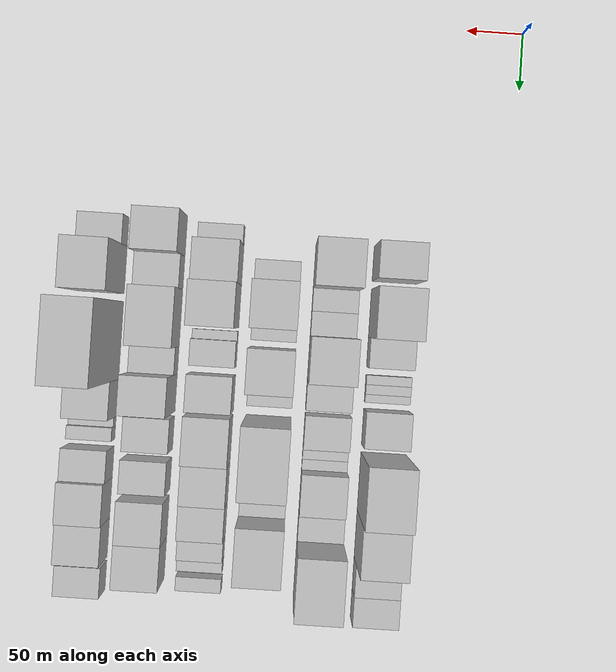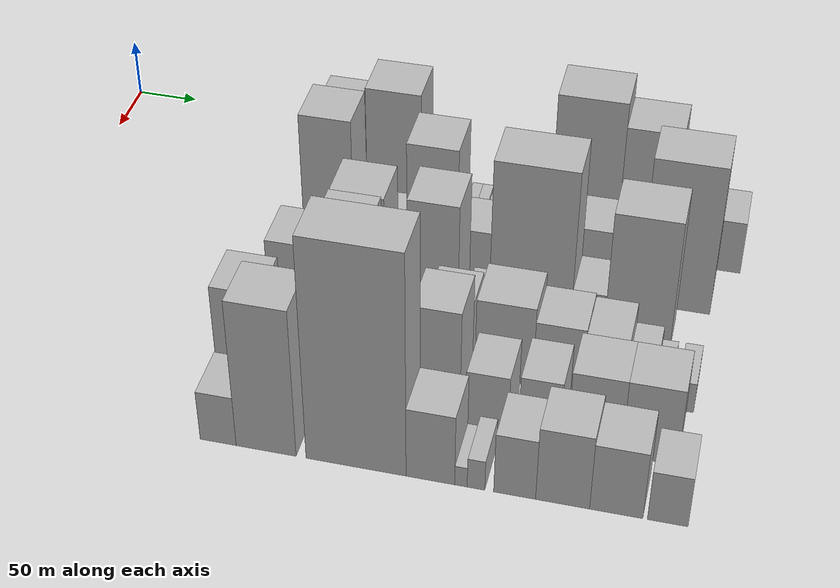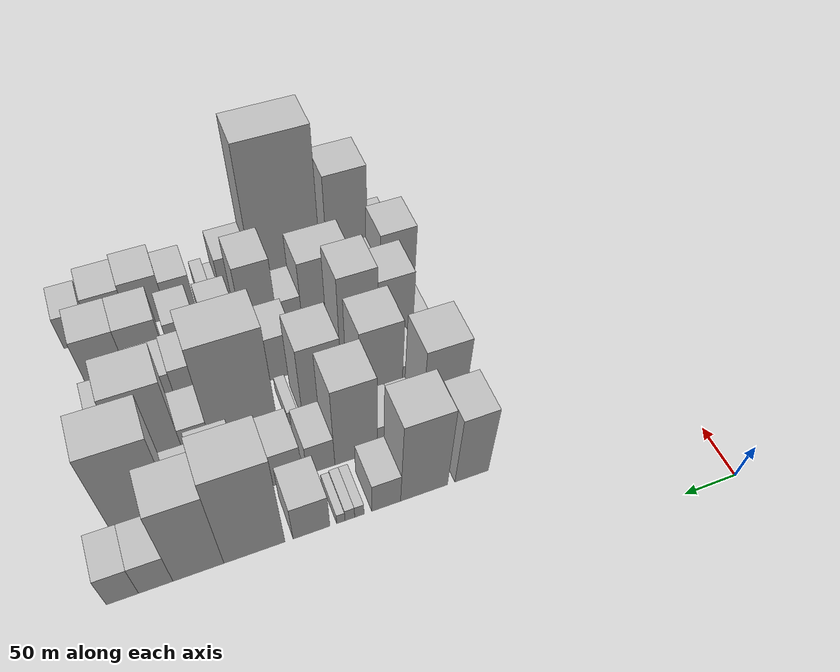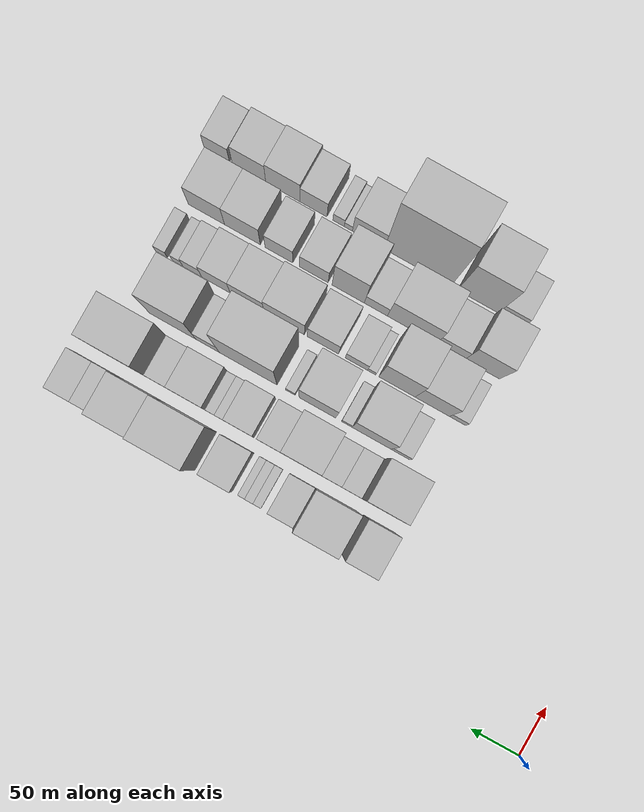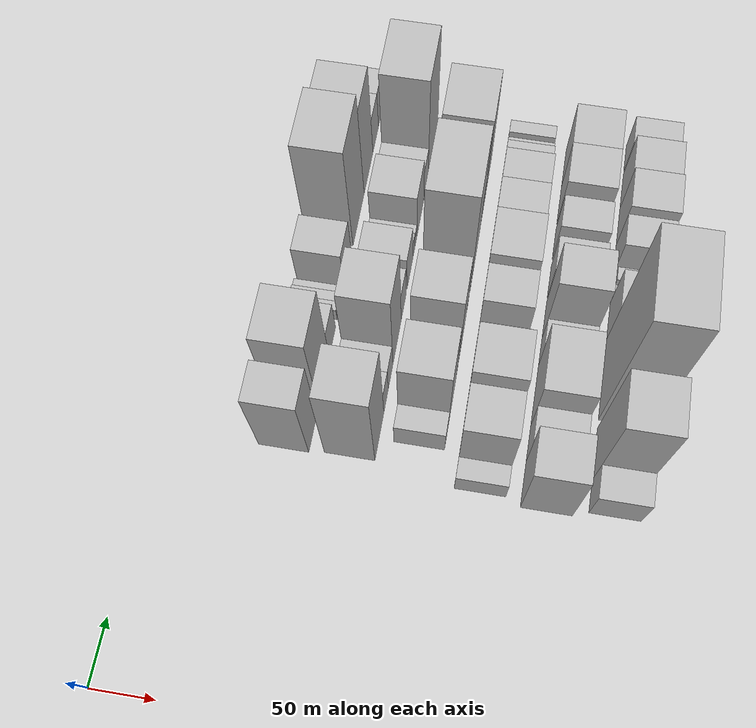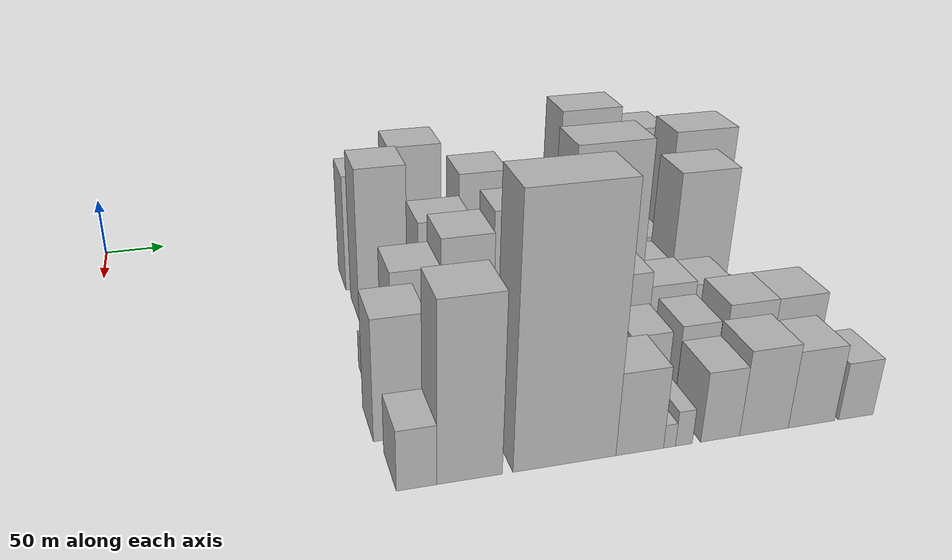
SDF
<sdf version="1.6">
 <world name="default">
  <model name="building_31">
   <static>1</static>
   <pose>100.0000 212.8217 0 0.000000 0.000000 0.000000</pose>
   <link name="link">
    <pose>0 0 51.00 0 0 0</pose>
    <collision name="collision"><geometry><box><size>40.0000 31.3202 102.0000</size></box></geometry></collision>
    <visual name="visual">
     <cast_shadows>0</cast_shadows>
     <geometry><box><size>40.0000 31.3202 102.0000</size></box></geometry>
     <material>
      <script>
       <uri>model://HANNAS_wall/materials/scripts</uri>
       <uri>model://HANNAS_wall/materials/textures</uri>
       <name>vrc/HANNAS_wall</name>
      </script>
     </material>
    </visual>
   </link>
  </model>
  <model name="building_32">
   <static>1</static>
   <pose>100.0000 257.0616 0 0.000000 0.000000 0.000000</pose>
   <link name="link">
    <pose>0 0 61.50 0 0 0</pose>
    <collision name="collision"><geometry><box><size>40.0000 43.1597 123.0000</size></box></geometry></collision>
    <visual name="visual">
     <cast_shadows>0</cast_shadows>
     <geometry><box><size>40.0000 43.1597 123.0000</size></box></geometry>
     <material>
      <script>
       <uri>model://HANNAS_wall/materials/scripts</uri>
       <uri>model://HANNAS_wall/materials/textures</uri>
       <name>vrc/HANNAS_wall</name>
      </script>
     </material>
    </visual>
   </link>
  </model>
  <model name="building_33">
   <static>1</static>
   <pose>100.0000 291.6445 0 0.000000 0.000000 0.000000</pose>
   <link name="link">
    <pose>0 0 22.50 0 0 0</pose>
    <collision name="collision"><geometry><box><size>40.0000 26.0062 45.0000</size></box></geometry></collision>
    <visual name="visual">
     <cast_shadows>0</cast_shadows>
     <geometry><box><size>40.0000 26.0062 45.0000</size></box></geometry>
     <material>
      <script>
       <uri>model://HANNAS_wall/materials/scripts</uri>
       <uri>model://HANNAS_wall/materials/textures</uri>
       <name>vrc/HANNAS_wall</name>
      </script>
     </material>
    </visual>
   </link>
  </model>
  <model name="building_34">
   <static>1</static>
   <pose>100.0000 315.8216 0 0.000000 0.000000 0.000000</pose>
   <link name="link">
    <pose>0 0 9.00 0 0 0</pose>
    <collision name="collision"><geometry><box><size>40.0000 8.3480 18.0000</size></box></geometry></collision>
    <visual name="visual">
     <cast_shadows>0</cast_shadows>
     <geometry><box><size>40.0000 8.3480 18.0000</size></box></geometry>
     <material>
      <script>
       <uri>model://HANNAS_wall/materials/scripts</uri>
       <uri>model://HANNAS_wall/materials/textures</uri>
       <name>vrc/HANNAS_wall</name>
      </script>
     </material>
    </visual>
   </link>
  </model>
  <model name="building_35">
   <static>1</static>
   <pose>100.0000 324.3021 0 0.000000 0.000000 0.000000</pose>
   <link name="link">
    <pose>0 0 9.00 0 0 0</pose>
    <collision name="collision"><geometry><box><size>40.0000 8.6129 18.0000</size></box></geometry></collision>
    <visual name="visual">
     <cast_shadows>0</cast_shadows>
     <geometry><box><size>40.0000 8.6129 18.0000</size></box></geometry>
     <material>
      <script>
       <uri>model://HANNAS_wall/materials/scripts</uri>
       <uri>model://HANNAS_wall/materials/textures</uri>
       <name>vrc/HANNAS_wall</name>
      </script>
     </material>
    </visual>
   </link>
  </model>
  <model name="building_36">
   <static>1</static>
   <pose>100.0000 332.2407 0 0.000000 0.000000 0.000000</pose>
   <link name="link">
    <pose>0 0 7.50 0 0 0</pose>
    <collision name="collision"><geometry><box><size>40.0000 7.2643 15.0000</size></box></geometry></collision>
    <visual name="visual">
     <cast_shadows>0</cast_shadows>
     <geometry><box><size>40.0000 7.2643 15.0000</size></box></geometry>
     <material>
      <script>
       <uri>model://HANNAS_wall/materials/scripts</uri>
       <uri>model://HANNAS_wall/materials/textures</uri>
       <name>vrc/HANNAS_wall</name>
      </script>
     </material>
    </visual>
   </link>
  </model>
  <model name="building_37">
   <static>1</static>
   <pose>100.0000 357.8737 0 0.000000 0.000000 0.000000</pose>
   <link name="link">
    <pose>0 0 27.00 0 0 0</pose>
    <collision name="collision"><geometry><box><size>40.0000 32.0017 54.0000</size></box></geometry></collision>
    <visual name="visual">
     <cast_shadows>0</cast_shadows>
     <geometry><box><size>40.0000 32.0017 54.0000</size></box></geometry>
     <material>
      <script>
       <uri>model://HANNAS_wall/materials/scripts</uri>
       <uri>model://HANNAS_wall/materials/textures</uri>
       <name>vrc/HANNAS_wall</name>
      </script>
     </material>
    </visual>
   </link>
  </model>
  <model name="building_38">
   <static>1</static>
   <pose>100.0000 406.7698 0 0.000000 0.000000 0.000000</pose>
   <link name="link">
    <pose>0 0 70.50 0 0 0</pose>
    <collision name="collision"><geometry><box><size>40.0000 51.7905 141.0000</size></box></geometry></collision>
    <visual name="visual">
     <cast_shadows>0</cast_shadows>
     <geometry><box><size>40.0000 51.7905 141.0000</size></box></geometry>
     <material>
      <script>
       <uri>model://HANNAS_wall/materials/scripts</uri>
       <uri>model://HANNAS_wall/materials/textures</uri>
       <name>vrc/HANNAS_wall</name>
      </script>
     </material>
    </visual>
   </link>
  </model>
  <model name="building_39">
   <static>1</static>
   <pose>100.0000 453.6846 0 0.000000 0.000000 0.000000</pose>
   <link name="link">
    <pose>0 0 60.00 0 0 0</pose>
    <collision name="collision"><geometry><box><size>40.0000 42.0391 120.0000</size></box></geometry></collision>
    <visual name="visual">
     <cast_shadows>0</cast_shadows>
     <geometry><box><size>40.0000 42.0391 120.0000</size></box></geometry>
     <material>
      <script>
       <uri>model://HANNAS_wall/materials/scripts</uri>
       <uri>model://HANNAS_wall/materials/textures</uri>
       <name>vrc/HANNAS_wall</name>
      </script>
     </material>
    </visual>
   </link>
  </model>
  <model name="building_40">
   <static>1</static>
   <pose>100.0000 488.5940 0 0.000000 0.000000 0.000000</pose>
   <link name="link">
    <pose>0 0 24.00 0 0 0</pose>
    <collision name="collision"><geometry><box><size>40.0000 27.7797 48.0000</size></box></geometry></collision>
    <visual name="visual">
     <cast_shadows>0</cast_shadows>
     <geometry><box><size>40.0000 27.7797 48.0000</size></box></geometry>
     <material>
      <script>
       <uri>model://HANNAS_wall/materials/scripts</uri>
       <uri>model://HANNAS_wall/materials/textures</uri>
       <name>vrc/HANNAS_wall</name>
      </script>
     </material>
    </visual>
   </link>
  </model>
  <model name="building_41">
   <static>1</static>
   <pose>100.0000 515.3228 0 0.000000 0.000000 0.000000</pose>
   <link name="link">
    <pose>0 0 24.00 0 0 0</pose>
    <collision name="collision"><geometry><box><size>40.0000 25.6779 48.0000</size></box></geometry></collision>
    <visual name="visual">
     <cast_shadows>0</cast_shadows>
     <geometry><box><size>40.0000 25.6779 48.0000</size></box></geometry>
     <material>
      <script>
       <uri>model://HANNAS_wall/materials/scripts</uri>
       <uri>model://HANNAS_wall/materials/textures</uri>
       <name>vrc/HANNAS_wall</name>
      </script>
     </material>
    </visual>
   </link>
  </model>
  <model name="building_79">
   <static>1</static>
   <pose>152.0000 218.8560 0 0.000000 0.000000 0.000000</pose>
   <link name="link">
    <pose>0 0 64.50 0 0 0</pose>
    <collision name="collision"><geometry><box><size>40.0000 39.4686 129.0000</size></box></geometry></collision>
    <visual name="visual">
     <cast_shadows>0</cast_shadows>
     <geometry><box><size>40.0000 39.4686 129.0000</size></box></geometry>
     <material>
      <script>
       <uri>model://HANNAS_wall/materials/scripts</uri>
       <uri>model://HANNAS_wall/materials/textures</uri>
       <name>vrc/HANNAS_wall</name>
      </script>
     </material>
    </visual>
   </link>
  </model>
  <model name="building_80">
   <static>1</static>
   <pose>152.0000 248.6482 0 0.000000 0.000000 0.000000</pose>
   <link name="link">
    <pose>0 0 19.50 0 0 0</pose>
    <collision name="collision"><geometry><box><size>40.0000 20.1158 39.0000</size></box></geometry></collision>
    <visual name="visual">
     <cast_shadows>0</cast_shadows>
     <geometry><box><size>40.0000 20.1158 39.0000</size></box></geometry>
     <material>
      <script>
       <uri>model://HANNAS_wall/materials/scripts</uri>
       <uri>model://HANNAS_wall/materials/textures</uri>
       <name>vrc/HANNAS_wall</name>
      </script>
     </material>
    </visual>
   </link>
  </model>
  <model name="building_81">
   <static>1</static>
   <pose>152.0000 269.4246 0 0.000000 0.000000 0.000000</pose>
   <link name="link">
    <pose>0 0 19.50 0 0 0</pose>
    <collision name="collision"><geometry><box><size>40.0000 21.4371 39.0000</size></box></geometry></collision>
    <visual name="visual">
     <cast_shadows>0</cast_shadows>
     <geometry><box><size>40.0000 21.4371 39.0000</size></box></geometry>
     <material>
      <script>
       <uri>model://HANNAS_wall/materials/scripts</uri>
       <uri>model://HANNAS_wall/materials/textures</uri>
       <name>vrc/HANNAS_wall</name>
      </script>
     </material>
    </visual>
   </link>
  </model>
  <model name="building_82">
   <static>1</static>
   <pose>152.0000 299.7005 0 0.000000 0.000000 0.000000</pose>
   <link name="link">
    <pose>0 0 58.50 0 0 0</pose>
    <collision name="collision"><geometry><box><size>40.0000 39.1146 117.0000</size></box></geometry></collision>
    <visual name="visual">
     <cast_shadows>0</cast_shadows>
     <geometry><box><size>40.0000 39.1146 117.0000</size></box></geometry>
     <material>
      <script>
       <uri>model://HANNAS_wall/materials/scripts</uri>
       <uri>model://HANNAS_wall/materials/textures</uri>
       <name>vrc/HANNAS_wall</name>
      </script>
     </material>
    </visual>
   </link>
  </model>
  <model name="building_83">
   <static>1</static>
   <pose>152.0000 332.0160 0 0.000000 0.000000 0.000000</pose>
   <link name="link">
    <pose>0 0 22.50 0 0 0</pose>
    <collision name="collision"><geometry><box><size>40.0000 25.5165 45.0000</size></box></geometry></collision>
    <visual name="visual">
     <cast_shadows>0</cast_shadows>
     <geometry><box><size>40.0000 25.5165 45.0000</size></box></geometry>
     <material>
      <script>
       <uri>model://HANNAS_wall/materials/scripts</uri>
       <uri>model://HANNAS_wall/materials/textures</uri>
       <name>vrc/HANNAS_wall</name>
      </script>
     </material>
    </visual>
   </link>
  </model>
  <model name="building_84">
   <static>1</static>
   <pose>152.0000 363.4922 0 0.000000 0.000000 0.000000</pose>
   <link name="link">
    <pose>0 0 25.50 0 0 0</pose>
    <collision name="collision"><geometry><box><size>40.0000 29.4357 51.0000</size></box></geometry></collision>
    <visual name="visual">
     <cast_shadows>0</cast_shadows>
     <geometry><box><size>40.0000 29.4357 51.0000</size></box></geometry>
     <material>
      <script>
       <uri>model://HANNAS_wall/materials/scripts</uri>
       <uri>model://HANNAS_wall/materials/textures</uri>
       <name>vrc/HANNAS_wall</name>
      </script>
     </material>
    </visual>
   </link>
  </model>
  <model name="building_85">
   <static>1</static>
   <pose>152.0000 383.4203 0 0.000000 0.000000 0.000000</pose>
   <link name="link">
    <pose>0 0 12.00 0 0 0</pose>
    <collision name="collision"><geometry><box><size>40.0000 10.4205 24.0000</size></box></geometry></collision>
    <visual name="visual">
     <cast_shadows>0</cast_shadows>
     <geometry><box><size>40.0000 10.4205 24.0000</size></box></geometry>
     <material>
      <script>
       <uri>model://HANNAS_wall/materials/scripts</uri>
       <uri>model://HANNAS_wall/materials/textures</uri>
       <name>vrc/HANNAS_wall</name>
      </script>
     </material>
    </visual>
   </link>
  </model>
  <model name="building_86">
   <static>1</static>
   <pose>152.0000 393.4754 0 0.000000 0.000000 0.000000</pose>
   <link name="link">
    <pose>0 0 10.50 0 0 0</pose>
    <collision name="collision"><geometry><box><size>40.0000 9.6899 21.0000</size></box></geometry></collision>
    <visual name="visual">
     <cast_shadows>0</cast_shadows>
     <geometry><box><size>40.0000 9.6899 21.0000</size></box></geometry>
     <material>
      <script>
       <uri>model://HANNAS_wall/materials/scripts</uri>
       <uri>model://HANNAS_wall/materials/textures</uri>
       <name>vrc/HANNAS_wall</name>
      </script>
     </material>
    </visual>
   </link>
  </model>
  <model name="building_87">
   <static>1</static>
   <pose>152.0000 416.3221 0 0.000000 0.000000 0.000000</pose>
   <link name="link">
    <pose>0 0 31.50 0 0 0</pose>
    <collision name="collision"><geometry><box><size>40.0000 36.0035 63.0000</size></box></geometry></collision>
    <visual name="visual">
     <cast_shadows>0</cast_shadows>
     <geometry><box><size>40.0000 36.0035 63.0000</size></box></geometry>
     <material>
      <script>
       <uri>model://HANNAS_wall/materials/scripts</uri>
       <uri>model://HANNAS_wall/materials/textures</uri>
       <name>vrc/HANNAS_wall</name>
      </script>
     </material>
    </visual>
   </link>
  </model>
  <model name="building_88">
   <static>1</static>
   <pose>152.0000 446.0612 0 0.000000 0.000000 0.000000</pose>
   <link name="link">
    <pose>0 0 22.50 0 0 0</pose>
    <collision name="collision"><geometry><box><size>40.0000 23.4746 45.0000</size></box></geometry></collision>
    <visual name="visual">
     <cast_shadows>0</cast_shadows>
     <geometry><box><size>40.0000 23.4746 45.0000</size></box></geometry>
     <material>
      <script>
       <uri>model://HANNAS_wall/materials/scripts</uri>
       <uri>model://HANNAS_wall/materials/textures</uri>
       <name>vrc/HANNAS_wall</name>
      </script>
     </material>
    </visual>
   </link>
  </model>
  <model name="building_89">
   <static>1</static>
   <pose>152.0000 484.1963 0 0.000000 0.000000 0.000000</pose>
   <link name="link">
    <pose>0 0 67.50 0 0 0</pose>
    <collision name="collision"><geometry><box><size>40.0000 52.7957 135.0000</size></box></geometry></collision>
    <visual name="visual">
     <cast_shadows>0</cast_shadows>
     <geometry><box><size>40.0000 52.7957 135.0000</size></box></geometry>
     <material>
      <script>
       <uri>model://HANNAS_wall/materials/scripts</uri>
       <uri>model://HANNAS_wall/materials/textures</uri>
       <name>vrc/HANNAS_wall</name>
      </script>
     </material>
    </visual>
   </link>
  </model>
  <model name="building_135">
   <static>1</static>
   <pose>204.0000 226.2220 0 0.000000 0.000000 0.000000</pose>
   <link name="link">
    <pose>0 0 18.00 0 0 0</pose>
    <collision name="collision"><geometry><box><size>40.0000 19.2158 36.0000</size></box></geometry></collision>
    <visual name="visual">
     <cast_shadows>0</cast_shadows>
     <geometry><box><size>40.0000 19.2158 36.0000</size></box></geometry>
     <material>
      <script>
       <uri>model://HANNAS_wall/materials/scripts</uri>
       <uri>model://HANNAS_wall/materials/textures</uri>
       <name>vrc/HANNAS_wall</name>
      </script>
     </material>
    </visual>
   </link>
  </model>
  <model name="building_136">
   <static>1</static>
   <pose>204.0000 256.1002 0 0.000000 0.000000 0.000000</pose>
   <link name="link">
    <pose>0 0 52.50 0 0 0</pose>
    <collision name="collision"><geometry><box><size>40.0000 40.5406 105.0000</size></box></geometry></collision>
    <visual name="visual">
     <cast_shadows>0</cast_shadows>
     <geometry><box><size>40.0000 40.5406 105.0000</size></box></geometry>
     <material>
      <script>
       <uri>model://HANNAS_wall/materials/scripts</uri>
       <uri>model://HANNAS_wall/materials/textures</uri>
       <name>vrc/HANNAS_wall</name>
      </script>
     </material>
    </visual>
   </link>
  </model>
  <model name="building_137">
   <static>1</static>
   <pose>204.0000 281.7711 0 0.000000 0.000000 0.000000</pose>
   <link name="link">
    <pose>0 0 12.00 0 0 0</pose>
    <collision name="collision"><geometry><box><size>40.0000 10.8013 24.0000</size></box></geometry></collision>
    <visual name="visual">
     <cast_shadows>0</cast_shadows>
     <geometry><box><size>40.0000 10.8013 24.0000</size></box></geometry>
     <material>
      <script>
       <uri>model://HANNAS_wall/materials/scripts</uri>
       <uri>model://HANNAS_wall/materials/textures</uri>
       <name>vrc/HANNAS_wall</name>
      </script>
     </material>
    </visual>
   </link>
  </model>
  <model name="building_138">
   <static>1</static>
   <pose>204.0000 312.2410 0 0.000000 0.000000 0.000000</pose>
   <link name="link">
    <pose>0 0 54.00 0 0 0</pose>
    <collision name="collision"><geometry><box><size>40.0000 38.1385 108.0000</size></box></geometry></collision>
    <visual name="visual">
     <cast_shadows>0</cast_shadows>
     <geometry><box><size>40.0000 38.1385 108.0000</size></box></geometry>
     <material>
      <script>
       <uri>model://HANNAS_wall/materials/scripts</uri>
       <uri>model://HANNAS_wall/materials/textures</uri>
       <name>vrc/HANNAS_wall</name>
      </script>
     </material>
    </visual>
   </link>
  </model>
  <model name="building_139">
   <static>1</static>
   <pose>204.0000 340.2498 0 0.000000 0.000000 0.000000</pose>
   <link name="link">
    <pose>0 0 10.50 0 0 0</pose>
    <collision name="collision"><geometry><box><size>40.0000 9.8791 21.0000</size></box></geometry></collision>
    <visual name="visual">
     <cast_shadows>0</cast_shadows>
     <geometry><box><size>40.0000 9.8791 21.0000</size></box></geometry>
     <material>
      <script>
       <uri>model://HANNAS_wall/materials/scripts</uri>
       <uri>model://HANNAS_wall/materials/textures</uri>
       <name>vrc/HANNAS_wall</name>
      </script>
     </material>
    </visual>
   </link>
  </model>
  <model name="building_140">
   <static>1</static>
   <pose>204.0000 384.2786 0 0.000000 0.000000 0.000000</pose>
   <link name="link">
    <pose>0 0 76.50 0 0 0</pose>
    <collision name="collision"><geometry><box><size>40.0000 60.1785 153.0000</size></box></geometry></collision>
    <visual name="visual">
     <cast_shadows>0</cast_shadows>
     <geometry><box><size>40.0000 60.1785 153.0000</size></box></geometry>
     <material>
      <script>
       <uri>model://HANNAS_wall/materials/scripts</uri>
       <uri>model://HANNAS_wall/materials/textures</uri>
       <name>vrc/HANNAS_wall</name>
      </script>
     </material>
    </visual>
   </link>
  </model>
  <model name="building_141">
   <static>1</static>
   <pose>204.0000 426.5903 0 0.000000 0.000000 0.000000</pose>
   <link name="link">
    <pose>0 0 24.00 0 0 0</pose>
    <collision name="collision"><geometry><box><size>40.0000 24.4449 48.0000</size></box></geometry></collision>
    <visual name="visual">
     <cast_shadows>0</cast_shadows>
     <geometry><box><size>40.0000 24.4449 48.0000</size></box></geometry>
     <material>
      <script>
       <uri>model://HANNAS_wall/materials/scripts</uri>
       <uri>model://HANNAS_wall/materials/textures</uri>
       <name>vrc/HANNAS_wall</name>
      </script>
     </material>
    </visual>
   </link>
  </model>
  <model name="building_142">
   <static>1</static>
   <pose>204.0000 462.7876 0 0.000000 0.000000 0.000000</pose>
   <link name="link">
    <pose>0 0 61.50 0 0 0</pose>
    <collision name="collision"><geometry><box><size>40.0000 47.9498 123.0000</size></box></geometry></collision>
    <visual name="visual">
     <cast_shadows>0</cast_shadows>
     <geometry><box><size>40.0000 47.9498 123.0000</size></box></geometry>
     <material>
      <script>
       <uri>model://HANNAS_wall/materials/scripts</uri>
       <uri>model://HANNAS_wall/materials/textures</uri>
       <name>vrc/HANNAS_wall</name>
      </script>
     </material>
    </visual>
   </link>
  </model>
  <model name="building_187">
   <static>1</static>
   <pose>256.0000 195.9161 0 0.000000 0.000000 0.000000</pose>
   <link name="link">
    <pose>0 0 15.00 0 0 0</pose>
    <collision name="collision"><geometry><box><size>40.0000 16.7779 30.0000</size></box></geometry></collision>
    <visual name="visual">
     <cast_shadows>0</cast_shadows>
     <geometry><box><size>40.0000 16.7779 30.0000</size></box></geometry>
     <material>
      <script>
       <uri>model://HANNAS_wall/materials/scripts</uri>
       <uri>model://HANNAS_wall/materials/textures</uri>
       <name>vrc/HANNAS_wall</name>
      </script>
     </material>
    </visual>
   </link>
  </model>
  <model name="building_188">
   <static>1</static>
   <pose>256.0000 222.0862 0 0.000000 0.000000 0.000000</pose>
   <link name="link">
    <pose>0 0 48.00 0 0 0</pose>
    <collision name="collision"><geometry><box><size>40.0000 35.5621 96.0000</size></box></geometry></collision>
    <visual name="visual">
     <cast_shadows>0</cast_shadows>
     <geometry><box><size>40.0000 35.5621 96.0000</size></box></geometry>
     <material>
      <script>
       <uri>model://HANNAS_wall/materials/scripts</uri>
       <uri>model://HANNAS_wall/materials/textures</uri>
       <name>vrc/HANNAS_wall</name>
      </script>
     </material>
    </visual>
   </link>
  </model>
  <model name="building_189">
   <static>1</static>
   <pose>256.0000 258.8095 0 0.000000 0.000000 0.000000</pose>
   <link name="link">
    <pose>0 0 58.50 0 0 0</pose>
    <collision name="collision"><geometry><box><size>40.0000 37.8846 117.0000</size></box></geometry></collision>
    <visual name="visual">
     <cast_shadows>0</cast_shadows>
     <geometry><box><size>40.0000 37.8846 117.0000</size></box></geometry>
     <material>
      <script>
       <uri>model://HANNAS_wall/materials/scripts</uri>
       <uri>model://HANNAS_wall/materials/textures</uri>
       <name>vrc/HANNAS_wall</name>
      </script>
     </material>
    </visual>
   </link>
  </model>
  <model name="building_190">
   <static>1</static>
   <pose>256.0000 285.0204 0 0.000000 0.000000 0.000000</pose>
   <link name="link">
    <pose>0 0 9.00 0 0 0</pose>
    <collision name="collision"><geometry><box><size>40.0000 8.5372 18.0000</size></box></geometry></collision>
    <visual name="visual">
     <cast_shadows>0</cast_shadows>
     <geometry><box><size>40.0000 8.5372 18.0000</size></box></geometry>
     <material>
      <script>
       <uri>model://HANNAS_wall/materials/scripts</uri>
       <uri>model://HANNAS_wall/materials/textures</uri>
       <name>vrc/HANNAS_wall</name>
      </script>
     </material>
    </visual>
   </link>
  </model>
  <model name="building_191">
   <static>1</static>
   <pose>256.0000 300.9326 0 0.000000 0.000000 0.000000</pose>
   <link name="link">
    <pose>0 0 19.50 0 0 0</pose>
    <collision name="collision"><geometry><box><size>40.0000 23.2873 39.0000</size></box></geometry></collision>
    <visual name="visual">
     <cast_shadows>0</cast_shadows>
     <geometry><box><size>40.0000 23.2873 39.0000</size></box></geometry>
     <material>
      <script>
       <uri>model://HANNAS_wall/materials/scripts</uri>
       <uri>model://HANNAS_wall/materials/textures</uri>
       <name>vrc/HANNAS_wall</name>
      </script>
     </material>
    </visual>
   </link>
  </model>
  <model name="building_192">
   <static>1</static>
   <pose>256.0000 335.8407 0 0.000000 0.000000 0.000000</pose>
   <link name="link">
    <pose>0 0 31.50 0 0 0</pose>
    <collision name="collision"><geometry><box><size>40.0000 32.5288 63.0000</size></box></geometry></collision>
    <visual name="visual">
     <cast_shadows>0</cast_shadows>
     <geometry><box><size>40.0000 32.5288 63.0000</size></box></geometry>
     <material>
      <script>
       <uri>model://HANNAS_wall/materials/scripts</uri>
       <uri>model://HANNAS_wall/materials/textures</uri>
       <name>vrc/HANNAS_wall</name>
      </script>
     </material>
    </visual>
   </link>
  </model>
  <model name="building_193">
   <static>1</static>
   <pose>256.0000 376.0570 0 0.000000 0.000000 0.000000</pose>
   <link name="link">
    <pose>0 0 36.00 0 0 0</pose>
    <collision name="collision"><geometry><box><size>40.0000 41.9037 72.0000</size></box></geometry></collision>
    <visual name="visual">
     <cast_shadows>0</cast_shadows>
     <geometry><box><size>40.0000 41.9037 72.0000</size></box></geometry>
     <material>
      <script>
       <uri>model://HANNAS_wall/materials/scripts</uri>
       <uri>model://HANNAS_wall/materials/textures</uri>
       <name>vrc/HANNAS_wall</name>
      </script>
     </material>
    </visual>
   </link>
  </model>
  <model name="building_194">
   <static>1</static>
   <pose>256.0000 414.7391 0 0.000000 0.000000 0.000000</pose>
   <link name="link">
    <pose>0 0 30.00 0 0 0</pose>
    <collision name="collision"><geometry><box><size>40.0000 35.4607 60.0000</size></box></geometry></collision>
    <visual name="visual">
     <cast_shadows>0</cast_shadows>
     <geometry><box><size>40.0000 35.4607 60.0000</size></box></geometry>
     <material>
      <script>
       <uri>model://HANNAS_wall/materials/scripts</uri>
       <uri>model://HANNAS_wall/materials/textures</uri>
       <name>vrc/HANNAS_wall</name>
      </script>
     </material>
    </visual>
   </link>
  </model>
  <model name="building_195">
   <static>1</static>
   <pose>256.0000 447.4326 0 0.000000 0.000000 0.000000</pose>
   <link name="link">
    <pose>0 0 28.50 0 0 0</pose>
    <collision name="collision"><geometry><box><size>40.0000 29.9262 57.0000</size></box></geometry></collision>
    <visual name="visual">
     <cast_shadows>0</cast_shadows>
     <geometry><box><size>40.0000 29.9262 57.0000</size></box></geometry>
     <material>
      <script>
       <uri>model://HANNAS_wall/materials/scripts</uri>
       <uri>model://HANNAS_wall/materials/textures</uri>
       <name>vrc/HANNAS_wall</name>
      </script>
     </material>
    </visual>
   </link>
  </model>
  <model name="building_196">
   <static>1</static>
   <pose>256.0000 472.2003 0 0.000000 0.000000 0.000000</pose>
   <link name="link">
    <pose>0 0 19.50 0 0 0</pose>
    <collision name="collision"><geometry><box><size>40.0000 19.6093 39.0000</size></box></geometry></collision>
    <visual name="visual">
     <cast_shadows>0</cast_shadows>
     <geometry><box><size>40.0000 19.6093 39.0000</size></box></geometry>
     <material>
      <script>
       <uri>model://HANNAS_wall/materials/scripts</uri>
       <uri>model://HANNAS_wall/materials/textures</uri>
       <name>vrc/HANNAS_wall</name>
      </script>
     </material>
    </visual>
   </link>
  </model>
  <model name="building_197">
   <static>1</static>
   <pose>256.0000 487.5305 0 0.000000 0.000000 0.000000</pose>
   <link name="link">
    <pose>0 0 13.50 0 0 0</pose>
    <collision name="collision"><geometry><box><size>40.0000 11.0511 27.0000</size></box></geometry></collision>
    <visual name="visual">
     <cast_shadows>0</cast_shadows>
     <geometry><box><size>40.0000 11.0511 27.0000</size></box></geometry>
     <material>
      <script>
       <uri>model://HANNAS_wall/materials/scripts</uri>
       <uri>model://HANNAS_wall/materials/textures</uri>
       <name>vrc/HANNAS_wall</name>
      </script>
     </material>
    </visual>
   </link>
  </model>
  <model name="building_198">
   <static>1</static>
   <pose>256.0000 504.2409 0 0.000000 0.000000 0.000000</pose>
   <link name="link">
    <pose>0 0 13.50 0 0 0</pose>
    <collision name="collision"><geometry><box><size>40.0000 12.3697 27.0000</size></box></geometry></collision>
    <visual name="visual">
     <cast_shadows>0</cast_shadows>
     <geometry><box><size>40.0000 12.3697 27.0000</size></box></geometry>
     <material>
      <script>
       <uri>model://HANNAS_wall/materials/scripts</uri>
       <uri>model://HANNAS_wall/materials/textures</uri>
       <name>vrc/HANNAS_wall</name>
      </script>
     </material>
    </visual>
   </link>
  </model>
  <model name="building_240">
   <static>1</static>
   <pose>308.0000 199.2541 0 0.000000 0.000000 0.000000</pose>
   <link name="link">
    <pose>0 0 46.50 0 0 0</pose>
    <collision name="collision"><geometry><box><size>40.0000 36.0311 93.0000</size></box></geometry></collision>
    <visual name="visual">
     <cast_shadows>0</cast_shadows>
     <geometry><box><size>40.0000 36.0311 93.0000</size></box></geometry>
     <material>
      <script>
       <uri>model://HANNAS_wall/materials/scripts</uri>
       <uri>model://HANNAS_wall/materials/textures</uri>
       <name>vrc/HANNAS_wall</name>
      </script>
     </material>
    </visual>
   </link>
  </model>
  <model name="building_241">
   <static>1</static>
   <pose>308.0000 231.9512 0 0.000000 0.000000 0.000000</pose>
   <link name="link">
    <pose>0 0 25.50 0 0 0</pose>
    <collision name="collision"><geometry><box><size>40.0000 29.3630 51.0000</size></box></geometry></collision>
    <visual name="visual">
     <cast_shadows>0</cast_shadows>
     <geometry><box><size>40.0000 29.3630 51.0000</size></box></geometry>
     <material>
      <script>
       <uri>model://HANNAS_wall/materials/scripts</uri>
       <uri>model://HANNAS_wall/materials/textures</uri>
       <name>vrc/HANNAS_wall</name>
      </script>
     </material>
    </visual>
   </link>
  </model>
  <model name="building_242">
   <static>1</static>
   <pose>308.0000 272.3084 0 0.000000 0.000000 0.000000</pose>
   <link name="link">
    <pose>0 0 43.50 0 0 0</pose>
    <collision name="collision"><geometry><box><size>40.0000 51.3515 87.0000</size></box></geometry></collision>
    <visual name="visual">
     <cast_shadows>0</cast_shadows>
     <geometry><box><size>40.0000 51.3515 87.0000</size></box></geometry>
     <material>
      <script>
       <uri>model://HANNAS_wall/materials/scripts</uri>
       <uri>model://HANNAS_wall/materials/textures</uri>
       <name>vrc/HANNAS_wall</name>
      </script>
     </material>
    </visual>
   </link>
  </model>
  <model name="building_243">
   <static>1</static>
   <pose>308.0000 309.9985 0 0.000000 0.000000 0.000000</pose>
   <link name="link">
    <pose>0 0 21.00 0 0 0</pose>
    <collision name="collision"><geometry><box><size>40.0000 24.0287 42.0000</size></box></geometry></collision>
    <visual name="visual">
     <cast_shadows>0</cast_shadows>
     <geometry><box><size>40.0000 24.0287 42.0000</size></box></geometry>
     <material>
      <script>
       <uri>model://HANNAS_wall/materials/scripts</uri>
       <uri>model://HANNAS_wall/materials/textures</uri>
       <name>vrc/HANNAS_wall</name>
      </script>
     </material>
    </visual>
   </link>
  </model>
  <model name="building_244">
   <static>1</static>
   <pose>308.0000 338.8487 0 0.000000 0.000000 0.000000</pose>
   <link name="link">
    <pose>0 0 52.50 0 0 0</pose>
    <collision name="collision"><geometry><box><size>40.0000 33.6717 105.0000</size></box></geometry></collision>
    <visual name="visual">
     <cast_shadows>0</cast_shadows>
     <geometry><box><size>40.0000 33.6717 105.0000</size></box></geometry>
     <material>
      <script>
       <uri>model://HANNAS_wall/materials/scripts</uri>
       <uri>model://HANNAS_wall/materials/textures</uri>
       <name>vrc/HANNAS_wall</name>
      </script>
     </material>
    </visual>
   </link>
  </model>
  <model name="building_245">
   <static>1</static>
   <pose>308.0000 374.6195 0 0.000000 0.000000 0.000000</pose>
   <link name="link">
    <pose>0 0 27.00 0 0 0</pose>
    <collision name="collision"><geometry><box><size>40.0000 29.8699 54.0000</size></box></geometry></collision>
    <visual name="visual">
     <cast_shadows>0</cast_shadows>
     <geometry><box><size>40.0000 29.8699 54.0000</size></box></geometry>
     <material>
      <script>
       <uri>model://HANNAS_wall/materials/scripts</uri>
       <uri>model://HANNAS_wall/materials/textures</uri>
       <name>vrc/HANNAS_wall</name>
      </script>
     </material>
    </visual>
   </link>
  </model>
  <model name="building_246">
   <static>1</static>
   <pose>308.0000 411.0148 0 0.000000 0.000000 0.000000</pose>
   <link name="link">
    <pose>0 0 28.50 0 0 0</pose>
    <collision name="collision"><geometry><box><size>40.0000 28.9207 57.0000</size></box></geometry></collision>
    <visual name="visual">
     <cast_shadows>0</cast_shadows>
     <geometry><box><size>40.0000 28.9207 57.0000</size></box></geometry>
     <material>
      <script>
       <uri>model://HANNAS_wall/materials/scripts</uri>
       <uri>model://HANNAS_wall/materials/textures</uri>
       <name>vrc/HANNAS_wall</name>
      </script>
     </material>
    </visual>
   </link>
  </model>
  <model name="building_247">
   <static>1</static>
   <pose>308.0000 449.1374 0 0.000000 0.000000 0.000000</pose>
   <link name="link">
    <pose>0 0 34.50 0 0 0</pose>
    <collision name="collision"><geometry><box><size>40.0000 37.3244 69.0000</size></box></geometry></collision>
    <visual name="visual">
     <cast_shadows>0</cast_shadows>
     <geometry><box><size>40.0000 37.3244 69.0000</size></box></geometry>
     <material>
      <script>
       <uri>model://HANNAS_wall/materials/scripts</uri>
       <uri>model://HANNAS_wall/materials/textures</uri>
       <name>vrc/HANNAS_wall</name>
      </script>
     </material>
    </visual>
   </link>
  </model>
  <model name="building_248">
   <static>1</static>
   <pose>308.0000 486.7132 0 0.000000 0.000000 0.000000</pose>
   <link name="link">
    <pose>0 0 34.50 0 0 0</pose>
    <collision name="collision"><geometry><box><size>40.0000 37.8272 69.0000</size></box></geometry></collision>
    <visual name="visual">
     <cast_shadows>0</cast_shadows>
     <geometry><box><size>40.0000 37.8272 69.0000</size></box></geometry>
     <material>
      <script>
       <uri>model://HANNAS_wall/materials/scripts</uri>
       <uri>model://HANNAS_wall/materials/textures</uri>
       <name>vrc/HANNAS_wall</name>
      </script>
     </material>
    </visual>
   </link>
  </model>
  <model name="building_284">
   <static>1</static>
   <pose>360.0000 198.5998 0 0.000000 0.000000 0.000000</pose>
   <link name="link">
    <pose>0 0 22.50 0 0 0</pose>
    <collision name="collision"><geometry><box><size>40.0000 25.7474 45.0000</size></box></geometry></collision>
    <visual name="visual">
     <cast_shadows>0</cast_shadows>
     <geometry><box><size>40.0000 25.7474 45.0000</size></box></geometry>
     <material>
      <script>
       <uri>model://HANNAS_wall/materials/scripts</uri>
       <uri>model://HANNAS_wall/materials/textures</uri>
       <name>vrc/HANNAS_wall</name>
      </script>
     </material>
    </visual>
   </link>
  </model>
  <model name="building_285">
   <static>1</static>
   <pose>360.0000 232.7118 0 0.000000 0.000000 0.000000</pose>
   <link name="link">
    <pose>0 0 66.00 0 0 0</pose>
    <collision name="collision"><geometry><box><size>40.0000 42.4765 132.0000</size></box></geometry></collision>
    <visual name="visual">
     <cast_shadows>0</cast_shadows>
     <geometry><box><size>40.0000 42.4765 132.0000</size></box></geometry>
     <material>
      <script>
       <uri>model://HANNAS_wall/materials/scripts</uri>
       <uri>model://HANNAS_wall/materials/textures</uri>
       <name>vrc/HANNAS_wall</name>
      </script>
     </material>
    </visual>
   </link>
  </model>
  <model name="building_286">
   <static>1</static>
   <pose>360.0000 295.7101 0 0.000000 0.000000 0.000000</pose>
   <link name="link">
    <pose>0 0 97.50 0 0 0</pose>
    <collision name="collision"><geometry><box><size>40.0000 69.5201 195.0000</size></box></geometry></collision>
    <visual name="visual">
     <cast_shadows>0</cast_shadows>
     <geometry><box><size>40.0000 69.5201 195.0000</size></box></geometry>
     <material>
      <script>
       <uri>model://HANNAS_wall/materials/scripts</uri>
       <uri>model://HANNAS_wall/materials/textures</uri>
       <name>vrc/HANNAS_wall</name>
      </script>
     </material>
    </visual>
   </link>
  </model>
  <model name="building_287">
   <static>1</static>
   <pose>360.0000 347.1002 0 0.000000 0.000000 0.000000</pose>
   <link name="link">
    <pose>0 0 31.50 0 0 0</pose>
    <collision name="collision"><geometry><box><size>40.0000 33.2600 63.0000</size></box></geometry></collision>
    <visual name="visual">
     <cast_shadows>0</cast_shadows>
     <geometry><box><size>40.0000 33.2600 63.0000</size></box></geometry>
     <material>
      <script>
       <uri>model://HANNAS_wall/materials/scripts</uri>
       <uri>model://HANNAS_wall/materials/textures</uri>
       <name>vrc/HANNAS_wall</name>
      </script>
     </material>
    </visual>
   </link>
  </model>
  <model name="building_288">
   <static>1</static>
   <pose>360.0000 367.9656 0 0.000000 0.000000 0.000000</pose>
   <link name="link">
    <pose>0 0 9.00 0 0 0</pose>
    <collision name="collision"><geometry><box><size>40.0000 8.4710 18.0000</size></box></geometry></collision>
    <visual name="visual">
     <cast_shadows>0</cast_shadows>
     <geometry><box><size>40.0000 8.4710 18.0000</size></box></geometry>
     <material>
      <script>
       <uri>model://HANNAS_wall/materials/scripts</uri>
       <uri>model://HANNAS_wall/materials/textures</uri>
       <name>vrc/HANNAS_wall</name>
      </script>
     </material>
    </visual>
   </link>
  </model>
  <model name="building_289">
   <static>1</static>
   <pose>360.0000 378.1854 0 0.000000 0.000000 0.000000</pose>
   <link name="link">
    <pose>0 0 13.50 0 0 0</pose>
    <collision name="collision"><geometry><box><size>40.0000 11.9687 27.0000</size></box></geometry></collision>
    <visual name="visual">
     <cast_shadows>0</cast_shadows>
     <geometry><box><size>40.0000 11.9687 27.0000</size></box></geometry>
     <material>
      <script>
       <uri>model://HANNAS_wall/materials/scripts</uri>
       <uri>model://HANNAS_wall/materials/textures</uri>
       <name>vrc/HANNAS_wall</name>
      </script>
     </material>
    </visual>
   </link>
  </model>
  <model name="building_290">
   <static>1</static>
   <pose>360.0000 404.2430 0 0.000000 0.000000 0.000000</pose>
   <link name="link">
    <pose>0 0 27.00 0 0 0</pose>
    <collision name="collision"><geometry><box><size>40.0000 28.1465 54.0000</size></box></geometry></collision>
    <visual name="visual">
     <cast_shadows>0</cast_shadows>
     <geometry><box><size>40.0000 28.1465 54.0000</size></box></geometry>
     <material>
      <script>
       <uri>model://HANNAS_wall/materials/scripts</uri>
       <uri>model://HANNAS_wall/materials/textures</uri>
       <name>vrc/HANNAS_wall</name>
      </script>
     </material>
    </visual>
   </link>
  </model>
  <model name="building_291">
   <static>1</static>
   <pose>360.0000 436.2742 0 0.000000 0.000000 0.000000</pose>
   <link name="link">
    <pose>0 0 33.00 0 0 0</pose>
    <collision name="collision"><geometry><box><size>40.0000 35.9159 66.0000</size></box></geometry></collision>
    <visual name="visual">
     <cast_shadows>0</cast_shadows>
     <geometry><box><size>40.0000 35.9159 66.0000</size></box></geometry>
     <material>
      <script>
       <uri>model://HANNAS_wall/materials/scripts</uri>
       <uri>model://HANNAS_wall/materials/textures</uri>
       <name>vrc/HANNAS_wall</name>
      </script>
     </material>
    </visual>
   </link>
  </model>
  <model name="building_292">
   <static>1</static>
   <pose>360.0000 471.7483 0 0.000000 0.000000 0.000000</pose>
   <link name="link">
    <pose>0 0 30.00 0 0 0</pose>
    <collision name="collision"><geometry><box><size>40.0000 35.0324 60.0000</size></box></geometry></collision>
    <visual name="visual">
     <cast_shadows>0</cast_shadows>
     <geometry><box><size>40.0000 35.0324 60.0000</size></box></geometry>
     <material>
      <script>
       <uri>model://HANNAS_wall/materials/scripts</uri>
       <uri>model://HANNAS_wall/materials/textures</uri>
       <name>vrc/HANNAS_wall</name>
      </script>
     </material>
    </visual>
   </link>
  </model>
  <model name="building_293">
   <static>1</static>
   <pose>360.0000 505.4998 0 0.000000 0.000000 0.000000</pose>
   <link name="link">
    <pose>0 0 22.50 0 0 0</pose>
    <collision name="collision"><geometry><box><size>40.0000 26.4706 45.0000</size></box></geometry></collision>
    <visual name="visual">
     <cast_shadows>0</cast_shadows>
     <geometry><box><size>40.0000 26.4706 45.0000</size></box></geometry>
     <material>
      <script>
       <uri>model://HANNAS_wall/materials/scripts</uri>
       <uri>model://HANNAS_wall/materials/textures</uri>
       <name>vrc/HANNAS_wall</name>
      </script>
     </material>
    </visual>
   </link>
  </model>
 </world>
</sdf>
